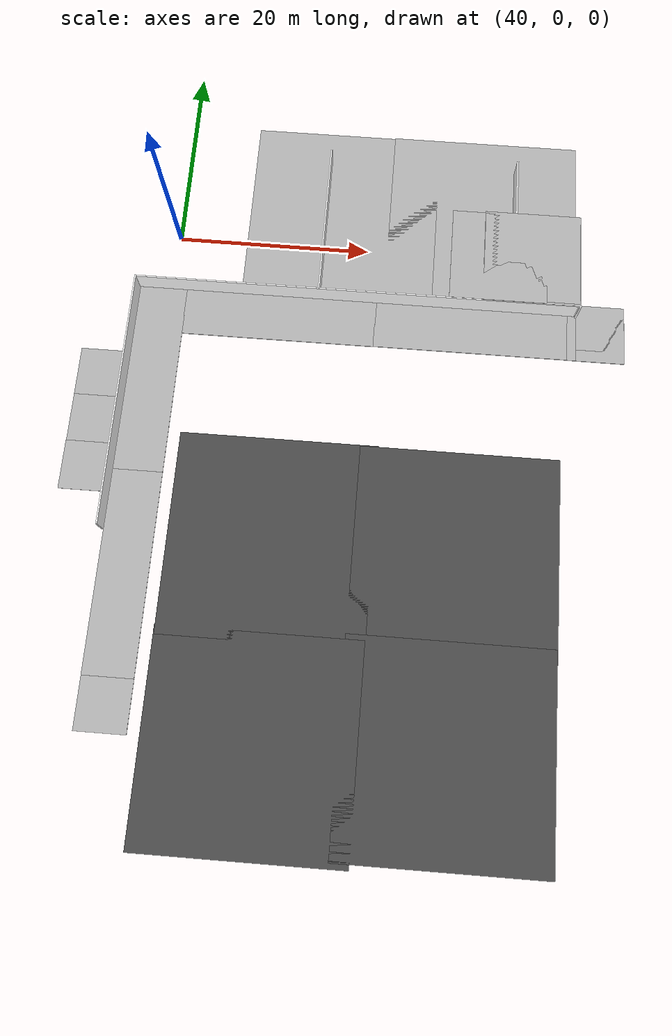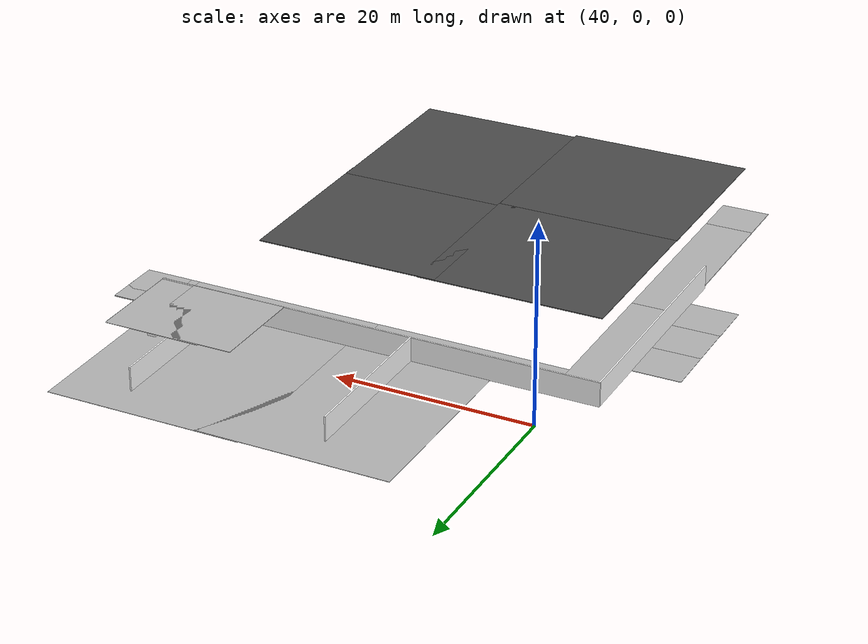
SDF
<sdf version="1.6">
 <world name="default">
  <model name="mainoffice">
   <pose>42.7555 15.4488 0 0 -0 0</pose>
   <link name="Wall_153">
    <collision name="Wall_153_Collision">
     <geometry><box><size>16.5 0.15 2.5</size></box></geometry>
     <pose>0 0 1.25 0 -0 0</pose>
    </collision>
    <visual name="Wall_153_Visual">
     <pose>0 0 1.25 0 -0 0</pose>
     <geometry><box><size>16.5 0.15 2.5</size></box></geometry>
     <material>
      <script>
       <uri>model://office_env/materials/scripts</uri>
       <uri>model://office_env/materials/textures</uri>
       <name>wall</name>
      </script>
      <ambient>1 1 1 1</ambient>
     </material>
    </visual>
    <pose>12.5271 -13.0476 0 0 0 -1.5708</pose>
   </link>
   <link name="Wall_158">
    <collision name="Wall_158_Collision">
     <geometry><box><size>16.5 0.15 2.5</size></box></geometry>
     <pose>0 0 1.25 0 -0 0</pose>
    </collision>
    <visual name="Wall_158_Visual">
     <pose>0 0 1.25 0 -0 0</pose>
     <geometry><box><size>16.5 0.15 2.5</size></box></geometry>
     <material>
      <script>
       <uri>model://office_env/materials/scripts</uri>
       <uri>model://office_env/materials/textures</uri>
       <name>wall</name>
      </script>
      <ambient>1 1 1 1</ambient>
     </material>
    </visual>
    <pose>32.6255 -12.9545 0 0 0 -1.5708</pose>
   </link>
   <link name="Wall_28">
    <collision name="Wall_28_Collision">
     <geometry><box><size>45.75 0.15 2.5</size></box></geometry>
     <pose>0 0 1.25 0 -0 0</pose>
    </collision>
    <visual name="Wall_28_Visual">
     <pose>0 0 1.25 0 -0 0</pose>
     <geometry><box><size>45.75 0.15 2.5</size></box></geometry>
     <material>
      <script>
       <uri>model://office_env/materials/scripts</uri>
       <uri>model://office_env/materials/textures</uri>
       <name>wall</name>
      </script>
      <ambient>1 1 1 1</ambient>
     </material>
    </visual>
    <pose>16.3009 -21.225 0 0 -0 3.14159</pose>
   </link>
   <link name="Wall_29">
    <collision name="Wall_29_Collision">
     <geometry><box><size>26.25 0.15 2.5</size></box></geometry>
     <pose>0 0 1.25 0 -0 0</pose>
    </collision>
    <visual name="Wall_29_Visual">
     <pose>0 0 1.25 0 -0 0</pose>
     <geometry><box><size>26.25 0.15 2.5</size></box></geometry>
     <material>
      <script>
       <uri>model://office_env/materials/scripts</uri>
       <uri>model://office_env/materials/textures</uri>
       <name>wall</name>
      </script>
      <ambient>1 1 1 1</ambient>
     </material>
    </visual>
    <pose>-6.49909 -34.275 0 0 0 -1.5708</pose>
   </link>
   <link name="Wall_46">
    <collision name="Wall_46_Collision">
     <geometry><box><size>0.5 0.15 2.5</size></box></geometry>
     <pose>0 0 1.25 0 -0 0</pose>
    </collision>
    <visual name="Wall_46_Visual">
     <pose>0 0 1.25 0 -0 0</pose>
     <geometry><box><size>0.5 0.15 2.5</size></box></geometry>
     <material>
      <script>
       <uri>model://office_env/materials/scripts</uri>
       <uri>model://office_env/materials/textures</uri>
       <name>wall</name>
      </script>
      <ambient>1 1 1 1</ambient>
     </material>
    </visual>
    <pose>39.2759 -21.225 0 0 -0 0</pose>
   </link>
   <link name="Wall_48">
    <collision name="Wall_48_Collision">
     <geometry><box><size>1 0.15 2.5</size></box></geometry>
     <pose>0 0 1.25 0 -0 0</pose>
    </collision>
    <visual name="Wall_48_Visual">
     <pose>0 0 1.25 0 -0 0</pose>
     <geometry><box><size>1 0.15 2.5</size></box></geometry>
     <material>
      <script>
       <uri>model://office_env/materials/scripts</uri>
       <uri>model://office_env/materials/textures</uri>
       <name>wall</name>
      </script>
      <ambient>1 1 1 1</ambient>
     </material>
    </visual>
    <pose>39.3509 -20.95 0 0 0 -1.5708</pose>
   </link>
   <static>1</static>
  </model>
  <model name="asphalt_plane">
   <static>1</static>
   <link name="link">
    <collision name="collision"><geometry><box><size>20 20 0.1</size></box></geometry></collision>
    <visual name="visual">
     <cast_shadows>0</cast_shadows>
     <geometry><box><size>20 20 0.1</size></box></geometry>
     <material>
      <script>
       <uri>model://asphalt_plane/materials/scripts</uri>
       <uri>model://asphalt_plane/materials/textures</uri>
       <name>vrc/asphalt</name>
      </script>
     </material>
    </visual>
   </link>
   <pose>70.7475 -31.5972 0 0 -0 0</pose>
  </model>
  <model name="asphalt_plane_14">
   <static>1</static>
   <link name="link">
    <collision name="collision"><geometry><box><size>20 20 0.1</size></box></geometry></collision>
    <visual name="visual">
     <cast_shadows>0</cast_shadows>
     <geometry><box><size>20 20 0.1</size></box></geometry>
     <material>
      <script>
       <uri>model://asphalt_plane/materials/scripts</uri>
       <uri>model://asphalt_plane/materials/textures</uri>
       <name>vrc/asphalt</name>
      </script>
     </material>
    </visual>
   </link>
   <pose>52.6349 -31.5293 0 0 -0 0</pose>
  </model>
  <model name="asphalt_plane_15">
   <static>1</static>
   <link name="link">
    <collision name="collision"><geometry><box><size>20 20 0.1</size></box></geometry></collision>
    <visual name="visual">
     <cast_shadows>0</cast_shadows>
     <geometry><box><size>20 20 0.1</size></box></geometry>
     <material>
      <script>
       <uri>model://asphalt_plane/materials/scripts</uri>
       <uri>model://asphalt_plane/materials/textures</uri>
       <name>vrc/asphalt</name>
      </script>
     </material>
    </visual>
   </link>
   <pose>52.5808 -50.6415 0 0 -0 0</pose>
  </model>
  <model name="asphalt_plane_16">
   <static>1</static>
   <link name="link">
    <collision name="collision"><geometry><box><size>20 20 0.1</size></box></geometry></collision>
    <visual name="visual">
     <cast_shadows>0</cast_shadows>
     <geometry><box><size>20 20 0.1</size></box></geometry>
     <material>
      <script>
       <uri>model://asphalt_plane/materials/scripts</uri>
       <uri>model://asphalt_plane/materials/textures</uri>
       <name>vrc/asphalt</name>
      </script>
     </material>
    </visual>
   </link>
   <pose>70.7064 -50.1212 0 0 -0 0</pose>
  </model>
  <model name="Box_36x15W">
   <link name="Wall">
    <pose>0 0 0.1985 0 -0 0</pose>
    <inertial>
     <mass>5</mass>
     <inertia><ixx>0.1022</ixx><iyy>0.4107</iyy><izz>0.3815</izz><ixy>0</ixy><ixz>0</ixz><iyz>0</iyz></inertia>
    </inertial>
    <collision name="Wall_Collision"><geometry><box><size>0.91 0.296 0.397</size></box></geometry></collision>
    <visual name="Wall_Visual">
     <geometry><box><size>0.91 0.296 0.397</size></box></geometry>
     <material>
      <script>
       <uri>model://office_env/materials/scripts</uri>
       <uri>model://office_env/materials/textures</uri>
       <name>wall</name>
      </script>
      <ambient>1 1 1 1</ambient>
     </material>
    </visual>
   </link>
   <static>1</static>
   <pose>76.5783 -4.8925 0 0 -0 0</pose>
  </model>
  <model name="Box_36x15W_0">
   <link name="Wall">
    <pose>0 0 0.1985 0 -0 0</pose>
    <inertial>
     <mass>5</mass>
     <inertia><ixx>0.1022</ixx><iyy>0.4107</iyy><izz>0.3815</izz><ixy>0</ixy><ixz>0</ixz><iyz>0</iyz></inertia>
    </inertial>
    <collision name="Wall_Collision"><geometry><box><size>0.91 0.296 0.397</size></box></geometry></collision>
    <visual name="Wall_Visual">
     <geometry><box><size>0.91 0.296 0.397</size></box></geometry>
     <material>
      <script>
       <uri>model://office_env/materials/scripts</uri>
       <uri>model://office_env/materials/textures</uri>
       <name>wall</name>
      </script>
      <ambient>1 1 1 1</ambient>
     </material>
    </visual>
   </link>
   <static>1</static>
   <pose>79.3292 -4.88719 0 0 -0 0</pose>
  </model>
  <model name="Box_36x15W_1">
   <link name="Wall">
    <pose>0 0 0.1985 0 -0 0</pose>
    <inertial>
     <mass>5</mass>
     <inertia><ixx>0.1022</ixx><iyy>0.4107</iyy><izz>0.3815</izz><ixy>0</ixy><ixz>0</ixz><iyz>0</iyz></inertia>
    </inertial>
    <collision name="Wall_Collision"><geometry><box><size>0.91 0.296 0.397</size></box></geometry></collision>
    <visual name="Wall_Visual">
     <geometry><box><size>0.91 0.296 0.397</size></box></geometry>
     <material>
      <script>
       <uri>model://office_env/materials/scripts</uri>
       <uri>model://office_env/materials/textures</uri>
       <name>wall</name>
      </script>
      <ambient>1 1 1 1</ambient>
     </material>
    </visual>
   </link>
   <static>1</static>
   <pose>76.6481 -3.15959 0 0 -0 0</pose>
  </model>
  <model name="Box_36x15W_clone">
   <link name="Wall">
    <pose>0 0 0.1985 0 -0 0</pose>
    <inertial>
     <mass>5</mass>
     <inertia><ixx>0.1022</ixx><iyy>0.4107</iyy><izz>0.3815</izz><ixy>0</ixy><ixz>0</ixz><iyz>0</iyz></inertia>
    </inertial>
    <collision name="Wall_Collision"><geometry><box><size>0.91 0.296 0.397</size></box></geometry></collision>
    <visual name="Wall_Visual">
     <geometry><box><size>0.91 0.296 0.397</size></box></geometry>
     <material>
      <script>
       <uri>model://office_env/materials/scripts</uri>
       <uri>model://office_env/materials/textures</uri>
       <name>wall</name>
      </script>
      <ambient>1 1 1 1</ambient>
     </material>
    </visual>
   </link>
   <static>1</static>
   <pose>79.4111 -3.09991 0 0 -0 0</pose>
  </model>
  <model name="Box_36x15W_clone_0">
   <link name="Wall">
    <pose>0 0 0.1985 0 -0 0</pose>
    <inertial>
     <mass>5</mass>
     <inertia><ixx>0.1022</ixx><iyy>0.4107</iyy><izz>0.3815</izz><ixy>0</ixy><ixz>0</ixz><iyz>0</iyz></inertia>
    </inertial>
    <collision name="Wall_Collision"><geometry><box><size>0.91 0.296 0.397</size></box></geometry></collision>
    <visual name="Wall_Visual">
     <geometry><box><size>0.91 0.296 0.397</size></box></geometry>
     <material>
      <script>
       <uri>model://office_env/materials/scripts</uri>
       <uri>model://office_env/materials/textures</uri>
       <name>wall</name>
      </script>
      <ambient>1 1 1 1</ambient>
     </material>
    </visual>
   </link>
   <static>1</static>
   <pose>76.6853 -1.41646 0 0 -0 0</pose>
  </model>
  <model name="Box_36x15W_clone_1">
   <link name="Wall">
    <pose>0 0 0.1985 0 -0 0</pose>
    <inertial>
     <mass>5</mass>
     <inertia><ixx>0.1022</ixx><iyy>0.4107</iyy><izz>0.3815</izz><ixy>0</ixy><ixz>0</ixz><iyz>0</iyz></inertia>
    </inertial>
    <collision name="Wall_Collision"><geometry><box><size>0.91 0.296 0.397</size></box></geometry></collision>
    <visual name="Wall_Visual">
     <geometry><box><size>0.91 0.296 0.397</size></box></geometry>
     <material>
      <script>
       <uri>model://office_env/materials/scripts</uri>
       <uri>model://office_env/materials/textures</uri>
       <name>wall</name>
      </script>
      <ambient>1 1 1 1</ambient>
     </material>
    </visual>
   </link>
   <static>1</static>
   <pose>79.4333 -1.32899 0 0 -0 0</pose>
  </model>
  <model name="Box_36x15W_clone_2">
   <link name="Wall">
    <pose>0 0 0.1985 0 -0 0</pose>
    <inertial>
     <mass>5</mass>
     <inertia><ixx>0.1022</ixx><iyy>0.4107</iyy><izz>0.3815</izz><ixy>0</ixy><ixz>0</ixz><iyz>0</iyz></inertia>
    </inertial>
    <collision name="Wall_Collision"><geometry><box><size>0.91 0.296 0.397</size></box></geometry></collision>
    <visual name="Wall_Visual">
     <geometry><box><size>0.91 0.296 0.397</size></box></geometry>
     <material>
      <script>
       <uri>model://office_env/materials/scripts</uri>
       <uri>model://office_env/materials/textures</uri>
       <name>wall</name>
      </script>
      <ambient>1 1 1 1</ambient>
     </material>
    </visual>
   </link>
   <static>1</static>
   <pose>76.7054 0.802933 0 0 -0 0</pose>
  </model>
  <model name="Box_36x15W_clone_3">
   <link name="Wall">
    <pose>0 0 0.1985 0 -0 0</pose>
    <inertial>
     <mass>5</mass>
     <inertia><ixx>0.1022</ixx><iyy>0.4107</iyy><izz>0.3815</izz><ixy>0</ixy><ixz>0</ixz><iyz>0</iyz></inertia>
    </inertial>
    <collision name="Wall_Collision"><geometry><box><size>0.91 0.296 0.397</size></box></geometry></collision>
    <visual name="Wall_Visual">
     <geometry><box><size>0.91 0.296 0.397</size></box></geometry>
     <material>
      <script>
       <uri>model://office_env/materials/scripts</uri>
       <uri>model://office_env/materials/textures</uri>
       <name>wall</name>
      </script>
      <ambient>1 1 1 1</ambient>
     </material>
    </visual>
   </link>
   <static>1</static>
   <pose>79.4097 0.802084 0 0 -0 0</pose>
  </model>
  <model name="Floor_30">
   <link name="main">
    <pose>0 0 0.01 0 -0 0</pose>
    <collision name="main_Collision"><geometry><box><size>20 20 0.05</size></box></geometry></collision>
    <visual name="main_Visual">
     <geometry><box><size>20 20 0.05</size></box></geometry>
     <material>
      <script>
       <uri>model://Floor_medium/materials/scripts</uri>
       <uri>model://Floor_medium/materials/textures</uri>
       <name>floor</name>
      </script>
     </material>
    </visual>
   </link>
   <static>1</static>
   <pose>72.0637 4.23485 0 0 -0 0</pose>
  </model>
  <model name="Floor_32">
   <link name="main">
    <pose>0 0 0.01 0 -0 0</pose>
    <collision name="main_Collision"><geometry><box><size>20 20 0.05</size></box></geometry></collision>
    <visual name="main_Visual">
     <geometry><box><size>20 20 0.05</size></box></geometry>
     <material>
      <script>
       <uri>model://Floor_medium/materials/scripts</uri>
       <uri>model://Floor_medium/materials/textures</uri>
       <name>floor</name>
      </script>
     </material>
    </visual>
   </link>
   <static>1</static>
   <pose>57.0667 4.14407 0 0 -0 0</pose>
  </model>
  <model name="Floor_36">
   <link name="main">
    <pose>0 0 0.01 0 -0 0</pose>
    <collision name="main_Collision"><geometry><box><size>5 5 0.05</size></box></geometry></collision>
    <visual name="main_Visual">
     <geometry><box><size>5 5 0.05</size></box></geometry>
     <material>
      <script>
       <uri>model://Floor_verysmall/materials/scripts</uri>
       <uri>model://Floor_verysmall/materials/textures</uri>
       <name>floor</name>
      </script>
     </material>
    </visual>
   </link>
   <static>1</static>
   <pose>33.79 -20.7523 0 0 -0 0</pose>
  </model>
  <model name="Floor_37">
   <link name="main">
    <pose>0 0 0.01 0 -0 0</pose>
    <collision name="main_Collision"><geometry><box><size>5 5 0.05</size></box></geometry></collision>
    <visual name="main_Visual">
     <geometry><box><size>5 5 0.05</size></box></geometry>
     <material>
      <script>
       <uri>model://Floor_verysmall/materials/scripts</uri>
       <uri>model://Floor_verysmall/materials/textures</uri>
       <name>floor</name>
      </script>
     </material>
    </visual>
   </link>
   <static>1</static>
   <pose>33.7875 -15.7631 0 0 -0 0</pose>
  </model>
  <model name="Floor_43">
   <link name="main">
    <pose>0 0 0.01 0 -0 0</pose>
    <collision name="main_Collision"><geometry><box><size>5 5 0.05</size></box></geometry></collision>
    <visual name="main_Visual">
     <geometry><box><size>5 5 0.05</size></box></geometry>
     <material>
      <script>
       <uri>model://Floor_verysmall/materials/scripts</uri>
       <uri>model://Floor_verysmall/materials/textures</uri>
       <name>floor</name>
      </script>
     </material>
    </visual>
   </link>
   <static>1</static>
   <pose>33.7535 -25.695 0 0 -0 0</pose>
  </model>
  <model name="outdoor_plane_8">
   <static>1</static>
   <link name="link">
    <collision name="collision"><geometry><box><size>5 20 0.1</size></box></geometry></collision>
    <visual name="visual">
     <cast_shadows>0</cast_shadows>
     <geometry><box><size>5 20 0.1</size></box></geometry>
     <material>
      <script>
       <uri>model://outdoor_plane/materials/scripts</uri>
       <uri>model://outdoor_plane/materials/textures</uri>
       <name>outds/Image</name>
      </script>
     </material>
    </visual>
   </link>
   <pose>38.8777 -15.8318 0 0 -0 0</pose>
  </model>
  <model name="outdoor_plane_9">
   <static>1</static>
   <link name="link">
    <collision name="collision"><geometry><box><size>5 20 0.1</size></box></geometry></collision>
    <visual name="visual">
     <cast_shadows>0</cast_shadows>
     <geometry><box><size>5 20 0.1</size></box></geometry>
     <material>
      <script>
       <uri>model://outdoor_plane/materials/scripts</uri>
       <uri>model://outdoor_plane/materials/textures</uri>
       <name>outds/Image</name>
      </script>
     </material>
    </visual>
   </link>
   <pose>38.8798 -35.8023 0 0 -0 0</pose>
  </model>
  <model name="outdoor_plane_10">
   <static>1</static>
   <link name="link">
    <collision name="collision"><geometry><box><size>5 5 0.1</size></box></geometry></collision>
    <visual name="visual">
     <cast_shadows>0</cast_shadows>
     <geometry><box><size>5 5 0.1</size></box></geometry>
     <material>
      <script>
       <uri>model://outdoor_planesmall/materials/scripts</uri>
       <uri>model://outdoor_planesmall/materials/textures</uri>
       <name>outdss/Image</name>
      </script>
     </material>
    </visual>
   </link>
   <pose>38.8907 -48.2873 0 0 -0 0</pose>
  </model>
  <model name="outdoor_plane_clone_clone_clone_clone_clone">
   <static>1</static>
   <link name="link">
    <collision name="collision"><geometry><box><size>5 20 0.1</size></box></geometry></collision>
    <visual name="visual">
     <cast_shadows>0</cast_shadows>
     <geometry><box><size>5 20 0.1</size></box></geometry>
     <material>
      <script>
       <uri>model://outdoor_plane/materials/scripts</uri>
       <uri>model://outdoor_plane/materials/textures</uri>
       <name>outds/Image</name>
      </script>
     </material>
    </visual>
   </link>
   <pose>51.323 -8.31588 0 0 -0 1.57079</pose>
  </model>
  <model name="outdoor_plane_clone_clone_clone_clone_clone_0">
   <static>1</static>
   <link name="link">
    <collision name="collision"><geometry><box><size>5 20 0.1</size></box></geometry></collision>
    <visual name="visual">
     <cast_shadows>0</cast_shadows>
     <geometry><box><size>5 20 0.1</size></box></geometry>
     <material>
      <script>
       <uri>model://outdoor_plane/materials/scripts</uri>
       <uri>model://outdoor_plane/materials/textures</uri>
       <name>outds/Image</name>
      </script>
     </material>
    </visual>
   </link>
   <pose>71.2527 -8.29295 0 0 -0 1.57079</pose>
  </model>
  <model name="outdoor_plane_15">
   <static>1</static>
   <link name="link">
    <collision name="collision"><geometry><box><size>5 5 0.1</size></box></geometry></collision>
    <visual name="visual">
     <cast_shadows>0</cast_shadows>
     <geometry><box><size>5 5 0.1</size></box></geometry>
     <material>
      <script>
       <uri>model://outdoor_planesmall/materials/scripts</uri>
       <uri>model://outdoor_planesmall/materials/textures</uri>
       <name>outdss/Image</name>
      </script>
     </material>
    </visual>
   </link>
   <pose>84.6813 -7.08458 0 0 -0 0</pose>
  </model>
  <model name="outdoor_plane_16">
   <static>1</static>
   <link name="link">
    <collision name="collision"><geometry><box><size>5 5 0.1</size></box></geometry></collision>
    <visual name="visual">
     <cast_shadows>0</cast_shadows>
     <geometry><box><size>5 5 0.1</size></box></geometry>
     <material>
      <script>
       <uri>model://outdoor_planesmall/materials/scripts</uri>
       <uri>model://outdoor_planesmall/materials/textures</uri>
       <name>outdss/Image</name>
      </script>
     </material>
    </visual>
   </link>
   <pose>83.7447 -8.30883 0 0 -0 0</pose>
  </model>
  <model name="outdoor_plane_17">
   <static>1</static>
   <link name="link">
    <collision name="collision"><geometry><box><size>5 5 0.1</size></box></geometry></collision>
    <visual name="visual">
     <cast_shadows>0</cast_shadows>
     <geometry><box><size>5 5 0.1</size></box></geometry>
     <material>
      <script>
       <uri>model://outdoor_planesmall/materials/scripts</uri>
       <uri>model://outdoor_planesmall/materials/textures</uri>
       <name>outdss/Image</name>
      </script>
     </material>
    </visual>
   </link>
   <pose>84.6743 -8.31438 0 0 -0 0</pose>
  </model>
  <model name="Floor_3_clone_10_clone">
   <link name="main">
    <pose>0 0 0.01 0 -0 0</pose>
    <collision name="main_Collision"><geometry><box><size>10 10 0.05</size></box></geometry></collision>
    <visual name="main_Visual">
     <geometry><box><size>10 10 0.05</size></box></geometry>
     <material>
      <script>
       <uri>model://Floor_small/materials/scripts</uri>
       <uri>model://Floor_small/materials/textures</uri>
       <name>floor</name>
      </script>
     </material>
    </visual>
   </link>
   <static>1</static>
   <pose>73.698 -0.729702 2.5 0 -0 0</pose>
  </model>
  <model name="Floor_3_clone_10_clone_2">
   <link name="main">
    <pose>0 0 0.01 0 -0 0</pose>
    <collision name="main_Collision"><geometry><box><size>10 10 0.05</size></box></geometry></collision>
    <visual name="main_Visual">
     <geometry><box><size>10 10 0.05</size></box></geometry>
     <material>
      <script>
       <uri>model://Floor_small/materials/scripts</uri>
       <uri>model://Floor_small/materials/textures</uri>
       <name>floor</name>
      </script>
     </material>
    </visual>
   </link>
   <static>1</static>
   <pose>77.1185 -0.570043 2.5 0 -0 0</pose>
  </model>
  <model name="Floor_3_clone_10_clone_5">
   <link name="main">
    <pose>0 0 0.01 0 -0 0</pose>
    <collision name="main_Collision"><geometry><box><size>10 10 0.05</size></box></geometry></collision>
    <visual name="main_Visual">
     <geometry><box><size>10 10 0.05</size></box></geometry>
     <material>
      <script>
       <uri>model://Floor_small/materials/scripts</uri>
       <uri>model://Floor_small/materials/textures</uri>
       <name>floor</name>
      </script>
     </material>
    </visual>
   </link>
   <static>1</static>
   <pose>77.1609 -0.802155 2.5 0 -0 0</pose>
  </model>
 </world>
</sdf>
